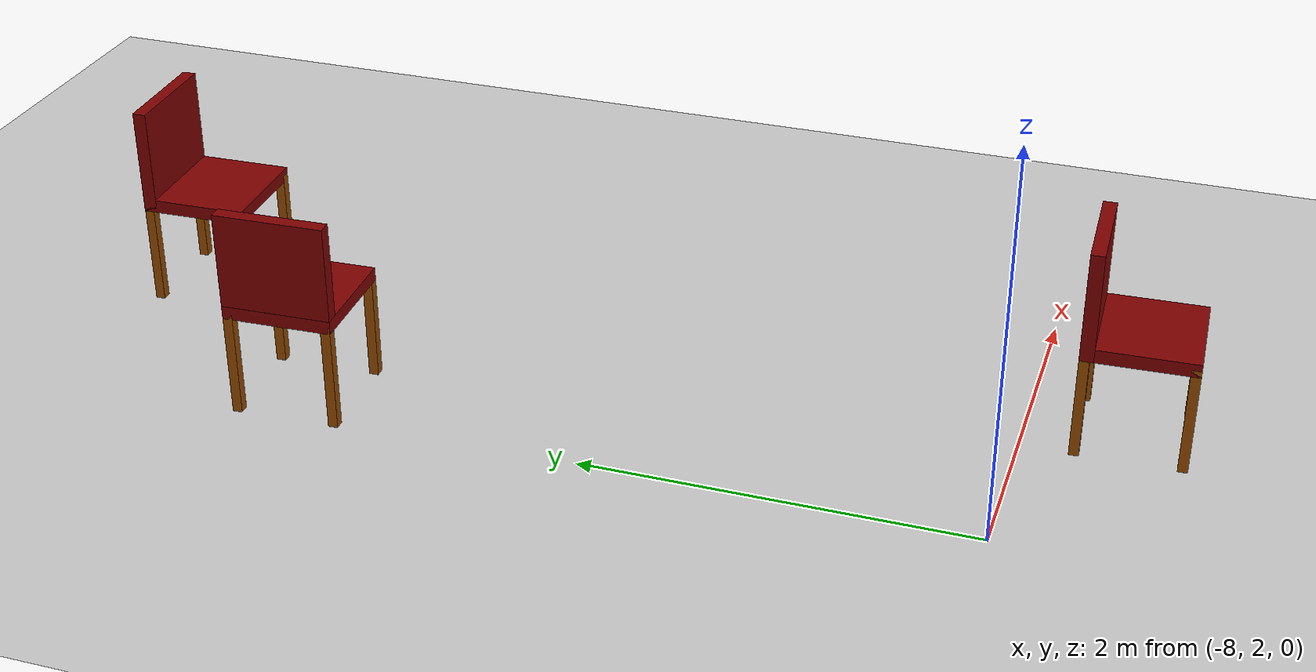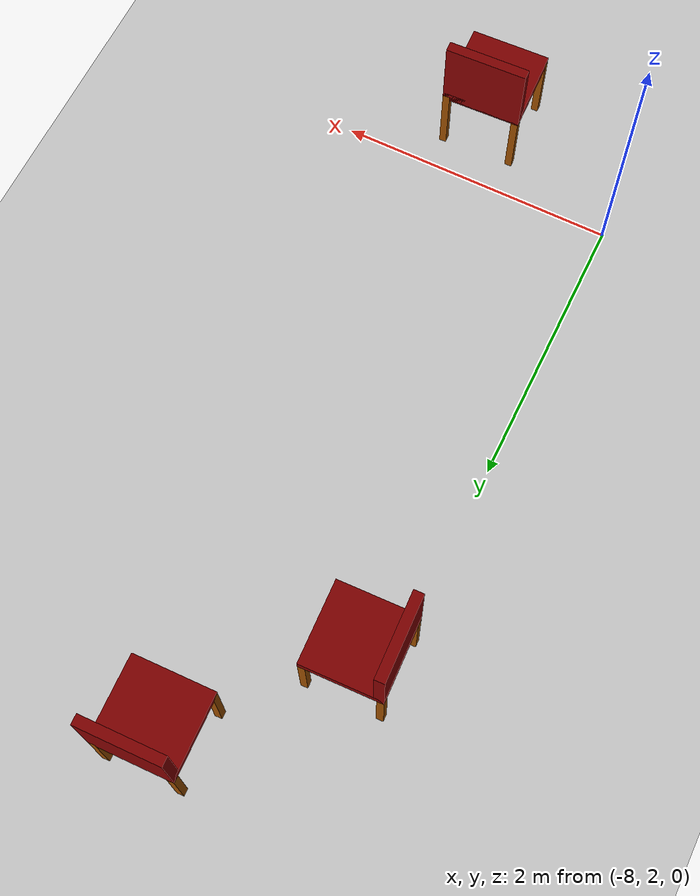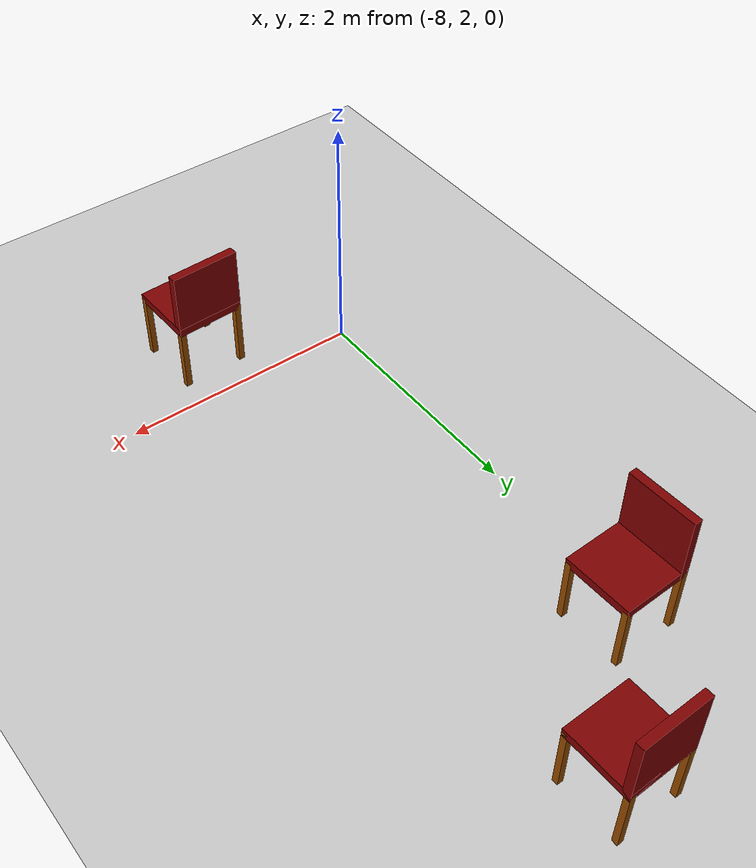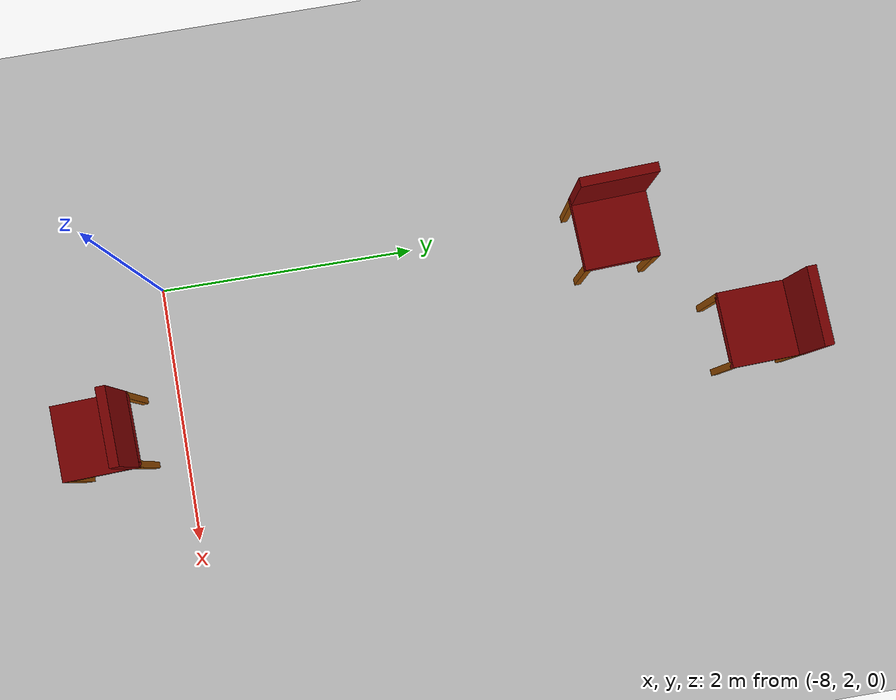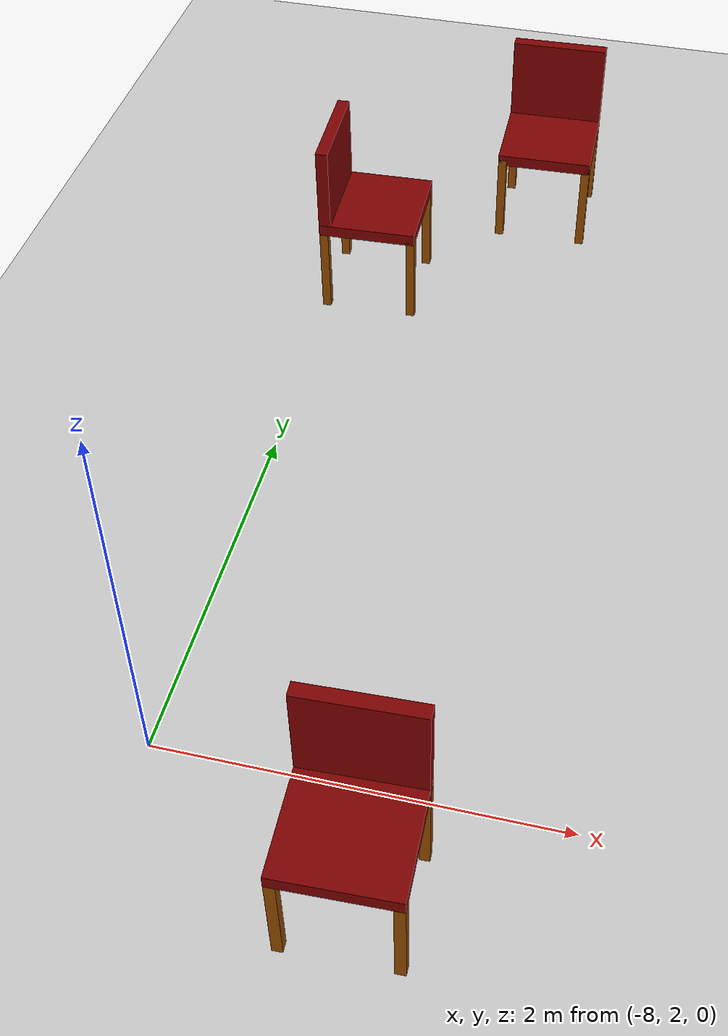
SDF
<sdf version="1.6">
 <world name="default">
  <model name="ground_plane">
   <static>1</static>
   <link name="link">
    <collision name="collision">
     <geometry><plane><normal>0 0 1</normal><size>100 100</size></plane></geometry>
     <surface>
      <contact><collide_bitmask>65535</collide_bitmask></contact>
      <friction><ode><mu>100</mu><mu2>50</mu2></ode></friction>
     </surface>
    </collision>
    <visual name="visual">
     <cast_shadows>0</cast_shadows>
     <geometry><plane><normal>0 0 1</normal><size>100 100</size></plane></geometry>
     <material>
      <script><uri>file://media/materials/scripts/gazebo.material</uri><name>Gazebo/Grey</name></script>
     </material>
    </visual>
   </link>
  </model>
  <model name="chair_0">
   <link name="link_0">
    <inertial>
     <mass>1</mass>
     <inertia>
      <ixx>0.166667</ixx>
      <ixy>0</ixy>
      <ixz>0</ixz>
      <iyy>0.166667</iyy>
      <iyz>0</iyz>
      <izz>0.166667</izz>
     </inertia>
    </inertial>
    <pose>0.000435 0.041667 0.148333 0 -0 0</pose>
    <visual name="visual">
     <geometry><box><size>0.57 0.57 0.07</size></box></geometry>
     <material>
      <lighting>1</lighting>
      <script><uri>file://media/materials/scripts/gazebo.material</uri><name>Gazebo/Grey</name></script>
      <shader type="vertex"><normal_map>__default__</normal_map></shader>
      <ambient>0.502 0 0 1</ambient>
      <diffuse>0.7 0.7 0.7 1</diffuse>
      <specular>0.01 0.01 0.01 1</specular>
      <emissive>0 0 0 1</emissive>
     </material>
    </visual>
    <collision name="collision">
     <geometry><box><size>0.57 0.57 0.07</size></box></geometry>
     <surface>
      <friction>
       <ode><mu>1</mu><mu2>1</mu2><fdir1>0 0 0</fdir1><slip1>0</slip1><slip2>0</slip2></ode>
       <torsional>
        <coefficient>1</coefficient>
        <patch_radius>0</patch_radius>
        <surface_radius>0</surface_radius>
        <use_patch_radius>1</use_patch_radius>
        <ode><slip>0</slip></ode>
       </torsional>
      </friction>
      <bounce><restitution_coefficient>0</restitution_coefficient><threshold>1e+06</threshold></bounce>
      <contact>
       <collide_without_contact>0</collide_without_contact>
       <collide_without_contact_bitmask>1</collide_without_contact_bitmask>
       <collide_bitmask>1</collide_bitmask>
       <ode>
        <soft_cfm>0</soft_cfm>
        <soft_erp>0.2</soft_erp>
        <kp>1e+13</kp>
        <kd>1</kd>
        <max_vel>0.01</max_vel>
        <min_depth>0</min_depth>
       </ode>
       <bullet>
        <split_impulse>1</split_impulse>
        <split_impulse_penetration_threshold>-0.01</split_impulse_penetration_threshold>
        <soft_cfm>0</soft_cfm>
        <soft_erp>0.2</soft_erp>
        <kp>1e+13</kp>
        <kd>1</kd>
       </bullet>
      </contact>
     </surface>
    </collision>
   </link>
   <link name="link_1">
    <inertial>
     <mass>1</mass>
     <inertia>
      <ixx>0.166667</ixx>
      <ixy>0</ixy>
      <ixz>0</ixz>
      <iyy>0.166667</iyy>
      <iyz>0</iyz>
      <izz>0.166667</izz>
     </inertia>
    </inertial>
    <pose>0.000435 -0.208333 0.398333 0 -0 0</pose>
    <visual name="visual">
     <geometry><box><size>0.57 0.07 0.57</size></box></geometry>
     <material>
      <lighting>1</lighting>
      <script><uri>file://media/materials/scripts/gazebo.material</uri><name>Gazebo/Grey</name></script>
      <shader type="vertex"><normal_map>__default__</normal_map></shader>
      <ambient>0.502 0 0 1</ambient>
      <diffuse>0.7 0.7 0.7 1</diffuse>
      <specular>0.01 0.01 0.01 1</specular>
      <emissive>0 0 0 1</emissive>
     </material>
    </visual>
    <collision name="collision">
     <geometry><box><size>0.57 0.07 0.57</size></box></geometry>
     <surface>
      <friction>
       <ode><mu>1</mu><mu2>1</mu2><fdir1>0 0 0</fdir1><slip1>0</slip1><slip2>0</slip2></ode>
       <torsional>
        <coefficient>1</coefficient>
        <patch_radius>0</patch_radius>
        <surface_radius>0</surface_radius>
        <use_patch_radius>1</use_patch_radius>
        <ode><slip>0</slip></ode>
       </torsional>
      </friction>
      <bounce><restitution_coefficient>0</restitution_coefficient><threshold>1e+06</threshold></bounce>
      <contact>
       <collide_without_contact>0</collide_without_contact>
       <collide_without_contact_bitmask>1</collide_without_contact_bitmask>
       <collide_bitmask>1</collide_bitmask>
       <ode>
        <soft_cfm>0</soft_cfm>
        <soft_erp>0.2</soft_erp>
        <kp>1e+13</kp>
        <kd>1</kd>
        <max_vel>0.01</max_vel>
        <min_depth>0</min_depth>
       </ode>
       <bullet>
        <split_impulse>1</split_impulse>
        <split_impulse_penetration_threshold>-0.01</split_impulse_penetration_threshold>
        <soft_cfm>0</soft_cfm>
        <soft_erp>0.2</soft_erp>
        <kp>1e+13</kp>
        <kd>1</kd>
       </bullet>
      </contact>
     </surface>
    </collision>
   </link>
   <link name="link_2">
    <inertial>
     <mass>1</mass>
     <inertia>
      <ixx>0.166667</ixx>
      <ixy>0</ixy>
      <ixz>0</ixz>
      <iyy>0.166667</iyy>
      <iyz>0</iyz>
      <izz>0.166667</izz>
     </inertia>
    </inertial>
    <pose>0.257825 -0.218333 -0.136667 0 -0 0</pose>
    <visual name="visual">
     <geometry><box><size>0.05 0.05 0.57</size></box></geometry>
     <material>
      <lighting>1</lighting>
      <script><uri>file://media/materials/scripts/gazebo.material</uri><name>Gazebo/Grey</name></script>
      <shader type="vertex"><normal_map>__default__</normal_map></shader>
      <ambient>0.588 0.294 0 1</ambient>
      <diffuse>0.7 0.7 0.7 1</diffuse>
      <specular>0.01 0.01 0.01 1</specular>
      <emissive>0 0 0 1</emissive>
     </material>
    </visual>
    <collision name="collision">
     <geometry><box><size>0.05 0.05 0.57</size></box></geometry>
     <surface>
      <friction>
       <ode><mu>1</mu><mu2>1</mu2><fdir1>0 0 0</fdir1><slip1>0</slip1><slip2>0</slip2></ode>
       <torsional>
        <coefficient>1</coefficient>
        <patch_radius>0</patch_radius>
        <surface_radius>0</surface_radius>
        <use_patch_radius>1</use_patch_radius>
        <ode><slip>0</slip></ode>
       </torsional>
      </friction>
      <bounce><restitution_coefficient>0</restitution_coefficient><threshold>1e+06</threshold></bounce>
      <contact>
       <collide_without_contact>0</collide_without_contact>
       <collide_without_contact_bitmask>1</collide_without_contact_bitmask>
       <collide_bitmask>1</collide_bitmask>
       <ode>
        <soft_cfm>0</soft_cfm>
        <soft_erp>0.2</soft_erp>
        <kp>1e+13</kp>
        <kd>1</kd>
        <max_vel>0.01</max_vel>
        <min_depth>0</min_depth>
       </ode>
       <bullet>
        <split_impulse>1</split_impulse>
        <split_impulse_penetration_threshold>-0.01</split_impulse_penetration_threshold>
        <soft_cfm>0</soft_cfm>
        <soft_erp>0.2</soft_erp>
        <kp>1e+13</kp>
        <kd>1</kd>
       </bullet>
      </contact>
     </surface>
    </collision>
   </link>
   <link name="link_2_clone">
    <inertial>
     <mass>1</mass>
     <inertia>
      <ixx>0.166667</ixx>
      <ixy>0</ixy>
      <ixz>0</ixz>
      <iyy>0.166667</iyy>
      <iyz>0</iyz>
      <izz>0.166667</izz>
     </inertia>
    </inertial>
    <pose>-0.259565 -0.218333 -0.136667 0 -0 0</pose>
    <visual name="visual">
     <geometry><box><size>0.05 0.05 0.57</size></box></geometry>
     <material>
      <lighting>1</lighting>
      <script><uri>file://media/materials/scripts/gazebo.material</uri><name>Gazebo/Grey</name></script>
      <shader type="vertex"><normal_map>__default__</normal_map></shader>
      <ambient>0.588 0.294 0 1</ambient>
      <diffuse>0.7 0.7 0.7 1</diffuse>
      <specular>0.01 0.01 0.01 1</specular>
      <emissive>0 0 0 1</emissive>
     </material>
    </visual>
    <collision name="collision">
     <geometry><box><size>0.05 0.05 0.57</size></box></geometry>
     <surface>
      <friction>
       <ode><mu>1</mu><mu2>1</mu2><fdir1>0 0 0</fdir1><slip1>0</slip1><slip2>0</slip2></ode>
       <torsional>
        <coefficient>1</coefficient>
        <patch_radius>0</patch_radius>
        <surface_radius>0</surface_radius>
        <use_patch_radius>1</use_patch_radius>
        <ode><slip>0</slip></ode>
       </torsional>
      </friction>
      <bounce><restitution_coefficient>0</restitution_coefficient><threshold>1e+06</threshold></bounce>
      <contact>
       <collide_without_contact>0</collide_without_contact>
       <collide_without_contact_bitmask>1</collide_without_contact_bitmask>
       <collide_bitmask>1</collide_bitmask>
       <ode>
        <soft_cfm>0</soft_cfm>
        <soft_erp>0.2</soft_erp>
        <kp>1e+13</kp>
        <kd>1</kd>
        <max_vel>0.01</max_vel>
        <min_depth>0</min_depth>
       </ode>
       <bullet>
        <split_impulse>1</split_impulse>
        <split_impulse_penetration_threshold>-0.01</split_impulse_penetration_threshold>
        <soft_cfm>0</soft_cfm>
        <soft_erp>0.2</soft_erp>
        <kp>1e+13</kp>
        <kd>1</kd>
       </bullet>
      </contact>
     </surface>
    </collision>
   </link>
   <link name="link_2_clone_clone">
    <inertial>
     <mass>1</mass>
     <inertia>
      <ixx>0.166667</ixx>
      <ixy>0</ixy>
      <ixz>0</ixz>
      <iyy>0.166667</iyy>
      <iyz>0</iyz>
      <izz>0.166667</izz>
     </inertia>
    </inertial>
    <pose>-0.259565 0.301667 -0.136667 0 -0 0</pose>
    <visual name="visual">
     <geometry><box><size>0.05 0.05 0.57</size></box></geometry>
     <material>
      <lighting>1</lighting>
      <script><uri>file://media/materials/scripts/gazebo.material</uri><name>Gazebo/Grey</name></script>
      <shader type="vertex"><normal_map>__default__</normal_map></shader>
      <ambient>0.588 0.294 0 1</ambient>
      <diffuse>0.7 0.7 0.7 1</diffuse>
      <specular>0.01 0.01 0.01 1</specular>
      <emissive>0 0 0 1</emissive>
     </material>
    </visual>
    <collision name="collision">
     <geometry><box><size>0.05 0.05 0.57</size></box></geometry>
     <surface>
      <friction>
       <ode><mu>1</mu><mu2>1</mu2><fdir1>0 0 0</fdir1><slip1>0</slip1><slip2>0</slip2></ode>
       <torsional>
        <coefficient>1</coefficient>
        <patch_radius>0</patch_radius>
        <surface_radius>0</surface_radius>
        <use_patch_radius>1</use_patch_radius>
        <ode><slip>0</slip></ode>
       </torsional>
      </friction>
      <bounce><restitution_coefficient>0</restitution_coefficient><threshold>1e+06</threshold></bounce>
      <contact>
       <collide_without_contact>0</collide_without_contact>
       <collide_without_contact_bitmask>1</collide_without_contact_bitmask>
       <collide_bitmask>1</collide_bitmask>
       <ode>
        <soft_cfm>0</soft_cfm>
        <soft_erp>0.2</soft_erp>
        <kp>1e+13</kp>
        <kd>1</kd>
        <max_vel>0.01</max_vel>
        <min_depth>0</min_depth>
       </ode>
       <bullet>
        <split_impulse>1</split_impulse>
        <split_impulse_penetration_threshold>-0.01</split_impulse_penetration_threshold>
        <soft_cfm>0</soft_cfm>
        <soft_erp>0.2</soft_erp>
        <kp>1e+13</kp>
        <kd>1</kd>
       </bullet>
      </contact>
     </surface>
    </collision>
   </link>
   <link name="link_2_clone_clone_0">
    <inertial>
     <mass>1</mass>
     <inertia>
      <ixx>0.166667</ixx>
      <ixy>0</ixy>
      <ixz>0</ixz>
      <iyy>0.166667</iyy>
      <iyz>0</iyz>
      <izz>0.166667</izz>
     </inertia>
    </inertial>
    <pose>0.260435 0.301667 -0.136667 0 -0 0</pose>
    <visual name="visual">
     <geometry><box><size>0.05 0.05 0.57</size></box></geometry>
     <material>
      <lighting>1</lighting>
      <script><uri>file://media/materials/scripts/gazebo.material</uri><name>Gazebo/Grey</name></script>
      <shader type="vertex"><normal_map>__default__</normal_map></shader>
      <ambient>0.588 0.294 0 1</ambient>
      <diffuse>0.7 0.7 0.7 1</diffuse>
      <specular>0.01 0.01 0.01 1</specular>
      <emissive>0 0 0 1</emissive>
     </material>
    </visual>
    <collision name="collision">
     <geometry><box><size>0.05 0.05 0.57</size></box></geometry>
     <surface>
      <friction>
       <ode><mu>1</mu><mu2>1</mu2><fdir1>0 0 0</fdir1><slip1>0</slip1><slip2>0</slip2></ode>
       <torsional>
        <coefficient>1</coefficient>
        <patch_radius>0</patch_radius>
        <surface_radius>0</surface_radius>
        <use_patch_radius>1</use_patch_radius>
        <ode><slip>0</slip></ode>
       </torsional>
      </friction>
      <bounce><restitution_coefficient>0</restitution_coefficient><threshold>1e+06</threshold></bounce>
      <contact>
       <collide_without_contact>0</collide_without_contact>
       <collide_without_contact_bitmask>1</collide_without_contact_bitmask>
       <collide_bitmask>1</collide_bitmask>
       <ode>
        <soft_cfm>0</soft_cfm>
        <soft_erp>0.2</soft_erp>
        <kp>1e+13</kp>
        <kd>1</kd>
        <max_vel>0.01</max_vel>
        <min_depth>0</min_depth>
       </ode>
       <bullet>
        <split_impulse>1</split_impulse>
        <split_impulse_penetration_threshold>-0.01</split_impulse_penetration_threshold>
        <soft_cfm>0</soft_cfm>
        <soft_erp>0.2</soft_erp>
        <kp>1e+13</kp>
        <kd>1</kd>
       </bullet>
      </contact>
     </surface>
    </collision>
   </link>
   <joint name="link_0_JOINT_0" type="fixed">
    <parent>link_0</parent>
    <child>link_1</child>
    <physics>
     <ode><limit><cfm>0</cfm><erp>0.2</erp></limit><suspension><cfm>0</cfm><erp>0.2</erp></suspension></ode>
    </physics>
   </joint>
   <joint name="link_0_JOINT_4" type="fixed">
    <parent>link_0</parent>
    <child>link_2</child>
    <physics>
     <ode><limit><cfm>0</cfm><erp>0.2</erp></limit><suspension><cfm>0</cfm><erp>0.2</erp></suspension></ode>
    </physics>
   </joint>
   <joint name="link_0_JOINT_5" type="fixed">
    <parent>link_0</parent>
    <child>link_2_clone</child>
    <physics>
     <ode><limit><cfm>0</cfm><erp>0.2</erp></limit><suspension><cfm>0</cfm><erp>0.2</erp></suspension></ode>
    </physics>
   </joint>
   <joint name="link_0_JOINT_6" type="fixed">
    <parent>link_0</parent>
    <child>link_2_clone_clone_0</child>
    <physics>
     <ode><limit><cfm>0</cfm><erp>0.2</erp></limit><suspension><cfm>0</cfm><erp>0.2</erp></suspension></ode>
    </physics>
   </joint>
   <joint name="link_0_JOINT_7" type="fixed">
    <parent>link_0</parent>
    <child>link_2_clone_clone</child>
    <physics>
     <ode><limit><cfm>0</cfm><erp>0.2</erp></limit><suspension><cfm>0</cfm><erp>0.2</erp></suspension></ode>
    </physics>
   </joint>
   <static>0</static>
   <pose>-7.8394 5.52494 0.421667 -1e-06 -1e-06 -1.53299</pose>
  </model>
  <model name="chair_2">
   <link name="link_0">
    <inertial>
     <mass>1</mass>
     <inertia>
      <ixx>0.166667</ixx>
      <ixy>0</ixy>
      <ixz>0</ixz>
      <iyy>0.166667</iyy>
      <iyz>0</iyz>
      <izz>0.166667</izz>
     </inertia>
    </inertial>
    <pose>0.000435 0.041667 0.148333 0 -0 0</pose>
    <visual name="visual">
     <geometry><box><size>0.57 0.57 0.07</size></box></geometry>
     <material>
      <lighting>1</lighting>
      <script><uri>file://media/materials/scripts/gazebo.material</uri><name>Gazebo/Grey</name></script>
      <shader type="vertex"><normal_map>__default__</normal_map></shader>
      <ambient>0.502 0 0 1</ambient>
      <diffuse>0.7 0.7 0.7 1</diffuse>
      <specular>0.01 0.01 0.01 1</specular>
      <emissive>0 0 0 1</emissive>
     </material>
    </visual>
    <collision name="collision">
     <geometry><box><size>0.57 0.57 0.07</size></box></geometry>
     <surface>
      <friction>
       <ode><mu>1</mu><mu2>1</mu2><fdir1>0 0 0</fdir1><slip1>0</slip1><slip2>0</slip2></ode>
       <torsional>
        <coefficient>1</coefficient>
        <patch_radius>0</patch_radius>
        <surface_radius>0</surface_radius>
        <use_patch_radius>1</use_patch_radius>
        <ode><slip>0</slip></ode>
       </torsional>
      </friction>
      <bounce><restitution_coefficient>0</restitution_coefficient><threshold>1e+06</threshold></bounce>
      <contact>
       <collide_without_contact>0</collide_without_contact>
       <collide_without_contact_bitmask>1</collide_without_contact_bitmask>
       <collide_bitmask>1</collide_bitmask>
       <ode>
        <soft_cfm>0</soft_cfm>
        <soft_erp>0.2</soft_erp>
        <kp>1e+13</kp>
        <kd>1</kd>
        <max_vel>0.01</max_vel>
        <min_depth>0</min_depth>
       </ode>
       <bullet>
        <split_impulse>1</split_impulse>
        <split_impulse_penetration_threshold>-0.01</split_impulse_penetration_threshold>
        <soft_cfm>0</soft_cfm>
        <soft_erp>0.2</soft_erp>
        <kp>1e+13</kp>
        <kd>1</kd>
       </bullet>
      </contact>
     </surface>
    </collision>
   </link>
   <link name="link_1">
    <inertial>
     <mass>1</mass>
     <inertia>
      <ixx>0.166667</ixx>
      <ixy>0</ixy>
      <ixz>0</ixz>
      <iyy>0.166667</iyy>
      <iyz>0</iyz>
      <izz>0.166667</izz>
     </inertia>
    </inertial>
    <pose>0.000435 -0.208333 0.398333 0 -0 0</pose>
    <visual name="visual">
     <geometry><box><size>0.57 0.07 0.57</size></box></geometry>
     <material>
      <lighting>1</lighting>
      <script><uri>file://media/materials/scripts/gazebo.material</uri><name>Gazebo/Grey</name></script>
      <shader type="vertex"><normal_map>__default__</normal_map></shader>
      <ambient>0.502 0 0 1</ambient>
      <diffuse>0.7 0.7 0.7 1</diffuse>
      <specular>0.01 0.01 0.01 1</specular>
      <emissive>0 0 0 1</emissive>
     </material>
    </visual>
    <collision name="collision">
     <geometry><box><size>0.57 0.07 0.57</size></box></geometry>
     <surface>
      <friction>
       <ode><mu>1</mu><mu2>1</mu2><fdir1>0 0 0</fdir1><slip1>0</slip1><slip2>0</slip2></ode>
       <torsional>
        <coefficient>1</coefficient>
        <patch_radius>0</patch_radius>
        <surface_radius>0</surface_radius>
        <use_patch_radius>1</use_patch_radius>
        <ode><slip>0</slip></ode>
       </torsional>
      </friction>
      <bounce><restitution_coefficient>0</restitution_coefficient><threshold>1e+06</threshold></bounce>
      <contact>
       <collide_without_contact>0</collide_without_contact>
       <collide_without_contact_bitmask>1</collide_without_contact_bitmask>
       <collide_bitmask>1</collide_bitmask>
       <ode>
        <soft_cfm>0</soft_cfm>
        <soft_erp>0.2</soft_erp>
        <kp>1e+13</kp>
        <kd>1</kd>
        <max_vel>0.01</max_vel>
        <min_depth>0</min_depth>
       </ode>
       <bullet>
        <split_impulse>1</split_impulse>
        <split_impulse_penetration_threshold>-0.01</split_impulse_penetration_threshold>
        <soft_cfm>0</soft_cfm>
        <soft_erp>0.2</soft_erp>
        <kp>1e+13</kp>
        <kd>1</kd>
       </bullet>
      </contact>
     </surface>
    </collision>
   </link>
   <link name="link_2">
    <inertial>
     <mass>1</mass>
     <inertia>
      <ixx>0.166667</ixx>
      <ixy>0</ixy>
      <ixz>0</ixz>
      <iyy>0.166667</iyy>
      <iyz>0</iyz>
      <izz>0.166667</izz>
     </inertia>
    </inertial>
    <pose>0.257825 -0.218333 -0.136667 0 -0 0</pose>
    <visual name="visual">
     <geometry><box><size>0.05 0.05 0.57</size></box></geometry>
     <material>
      <lighting>1</lighting>
      <script><uri>file://media/materials/scripts/gazebo.material</uri><name>Gazebo/Grey</name></script>
      <shader type="vertex"><normal_map>__default__</normal_map></shader>
      <ambient>0.588 0.294 0 1</ambient>
      <diffuse>0.7 0.7 0.7 1</diffuse>
      <specular>0.01 0.01 0.01 1</specular>
      <emissive>0 0 0 1</emissive>
     </material>
    </visual>
    <collision name="collision">
     <geometry><box><size>0.05 0.05 0.57</size></box></geometry>
     <surface>
      <friction>
       <ode><mu>1</mu><mu2>1</mu2><fdir1>0 0 0</fdir1><slip1>0</slip1><slip2>0</slip2></ode>
       <torsional>
        <coefficient>1</coefficient>
        <patch_radius>0</patch_radius>
        <surface_radius>0</surface_radius>
        <use_patch_radius>1</use_patch_radius>
        <ode><slip>0</slip></ode>
       </torsional>
      </friction>
      <bounce><restitution_coefficient>0</restitution_coefficient><threshold>1e+06</threshold></bounce>
      <contact>
       <collide_without_contact>0</collide_without_contact>
       <collide_without_contact_bitmask>1</collide_without_contact_bitmask>
       <collide_bitmask>1</collide_bitmask>
       <ode>
        <soft_cfm>0</soft_cfm>
        <soft_erp>0.2</soft_erp>
        <kp>1e+13</kp>
        <kd>1</kd>
        <max_vel>0.01</max_vel>
        <min_depth>0</min_depth>
       </ode>
       <bullet>
        <split_impulse>1</split_impulse>
        <split_impulse_penetration_threshold>-0.01</split_impulse_penetration_threshold>
        <soft_cfm>0</soft_cfm>
        <soft_erp>0.2</soft_erp>
        <kp>1e+13</kp>
        <kd>1</kd>
       </bullet>
      </contact>
     </surface>
    </collision>
   </link>
   <link name="link_2_clone">
    <inertial>
     <mass>1</mass>
     <inertia>
      <ixx>0.166667</ixx>
      <ixy>0</ixy>
      <ixz>0</ixz>
      <iyy>0.166667</iyy>
      <iyz>0</iyz>
      <izz>0.166667</izz>
     </inertia>
    </inertial>
    <pose>-0.259565 -0.218333 -0.136667 0 -0 0</pose>
    <visual name="visual">
     <geometry><box><size>0.05 0.05 0.57</size></box></geometry>
     <material>
      <lighting>1</lighting>
      <script><uri>file://media/materials/scripts/gazebo.material</uri><name>Gazebo/Grey</name></script>
      <shader type="vertex"><normal_map>__default__</normal_map></shader>
      <ambient>0.588 0.294 0 1</ambient>
      <diffuse>0.7 0.7 0.7 1</diffuse>
      <specular>0.01 0.01 0.01 1</specular>
      <emissive>0 0 0 1</emissive>
     </material>
    </visual>
    <collision name="collision">
     <geometry><box><size>0.05 0.05 0.57</size></box></geometry>
     <surface>
      <friction>
       <ode><mu>1</mu><mu2>1</mu2><fdir1>0 0 0</fdir1><slip1>0</slip1><slip2>0</slip2></ode>
       <torsional>
        <coefficient>1</coefficient>
        <patch_radius>0</patch_radius>
        <surface_radius>0</surface_radius>
        <use_patch_radius>1</use_patch_radius>
        <ode><slip>0</slip></ode>
       </torsional>
      </friction>
      <bounce><restitution_coefficient>0</restitution_coefficient><threshold>1e+06</threshold></bounce>
      <contact>
       <collide_without_contact>0</collide_without_contact>
       <collide_without_contact_bitmask>1</collide_without_contact_bitmask>
       <collide_bitmask>1</collide_bitmask>
       <ode>
        <soft_cfm>0</soft_cfm>
        <soft_erp>0.2</soft_erp>
        <kp>1e+13</kp>
        <kd>1</kd>
        <max_vel>0.01</max_vel>
        <min_depth>0</min_depth>
       </ode>
       <bullet>
        <split_impulse>1</split_impulse>
        <split_impulse_penetration_threshold>-0.01</split_impulse_penetration_threshold>
        <soft_cfm>0</soft_cfm>
        <soft_erp>0.2</soft_erp>
        <kp>1e+13</kp>
        <kd>1</kd>
       </bullet>
      </contact>
     </surface>
    </collision>
   </link>
   <link name="link_2_clone_clone">
    <inertial>
     <mass>1</mass>
     <inertia>
      <ixx>0.166667</ixx>
      <ixy>0</ixy>
      <ixz>0</ixz>
      <iyy>0.166667</iyy>
      <iyz>0</iyz>
      <izz>0.166667</izz>
     </inertia>
    </inertial>
    <pose>-0.259565 0.301667 -0.136667 0 -0 0</pose>
    <visual name="visual">
     <geometry><box><size>0.05 0.05 0.57</size></box></geometry>
     <material>
      <lighting>1</lighting>
      <script><uri>file://media/materials/scripts/gazebo.material</uri><name>Gazebo/Grey</name></script>
      <shader type="vertex"><normal_map>__default__</normal_map></shader>
      <ambient>0.588 0.294 0 1</ambient>
      <diffuse>0.7 0.7 0.7 1</diffuse>
      <specular>0.01 0.01 0.01 1</specular>
      <emissive>0 0 0 1</emissive>
     </material>
    </visual>
    <collision name="collision">
     <geometry><box><size>0.05 0.05 0.57</size></box></geometry>
     <surface>
      <friction>
       <ode><mu>1</mu><mu2>1</mu2><fdir1>0 0 0</fdir1><slip1>0</slip1><slip2>0</slip2></ode>
       <torsional>
        <coefficient>1</coefficient>
        <patch_radius>0</patch_radius>
        <surface_radius>0</surface_radius>
        <use_patch_radius>1</use_patch_radius>
        <ode><slip>0</slip></ode>
       </torsional>
      </friction>
      <bounce><restitution_coefficient>0</restitution_coefficient><threshold>1e+06</threshold></bounce>
      <contact>
       <collide_without_contact>0</collide_without_contact>
       <collide_without_contact_bitmask>1</collide_without_contact_bitmask>
       <collide_bitmask>1</collide_bitmask>
       <ode>
        <soft_cfm>0</soft_cfm>
        <soft_erp>0.2</soft_erp>
        <kp>1e+13</kp>
        <kd>1</kd>
        <max_vel>0.01</max_vel>
        <min_depth>0</min_depth>
       </ode>
       <bullet>
        <split_impulse>1</split_impulse>
        <split_impulse_penetration_threshold>-0.01</split_impulse_penetration_threshold>
        <soft_cfm>0</soft_cfm>
        <soft_erp>0.2</soft_erp>
        <kp>1e+13</kp>
        <kd>1</kd>
       </bullet>
      </contact>
     </surface>
    </collision>
   </link>
   <link name="link_2_clone_clone_0">
    <inertial>
     <mass>1</mass>
     <inertia>
      <ixx>0.166667</ixx>
      <ixy>0</ixy>
      <ixz>0</ixz>
      <iyy>0.166667</iyy>
      <iyz>0</iyz>
      <izz>0.166667</izz>
     </inertia>
    </inertial>
    <pose>0.260435 0.301667 -0.136667 0 -0 0</pose>
    <visual name="visual">
     <geometry><box><size>0.05 0.05 0.57</size></box></geometry>
     <material>
      <lighting>1</lighting>
      <script><uri>file://media/materials/scripts/gazebo.material</uri><name>Gazebo/Grey</name></script>
      <shader type="vertex"><normal_map>__default__</normal_map></shader>
      <ambient>0.588 0.294 0 1</ambient>
      <diffuse>0.7 0.7 0.7 1</diffuse>
      <specular>0.01 0.01 0.01 1</specular>
      <emissive>0 0 0 1</emissive>
     </material>
    </visual>
    <collision name="collision">
     <geometry><box><size>0.05 0.05 0.57</size></box></geometry>
     <surface>
      <friction>
       <ode><mu>1</mu><mu2>1</mu2><fdir1>0 0 0</fdir1><slip1>0</slip1><slip2>0</slip2></ode>
       <torsional>
        <coefficient>1</coefficient>
        <patch_radius>0</patch_radius>
        <surface_radius>0</surface_radius>
        <use_patch_radius>1</use_patch_radius>
        <ode><slip>0</slip></ode>
       </torsional>
      </friction>
      <bounce><restitution_coefficient>0</restitution_coefficient><threshold>1e+06</threshold></bounce>
      <contact>
       <collide_without_contact>0</collide_without_contact>
       <collide_without_contact_bitmask>1</collide_without_contact_bitmask>
       <collide_bitmask>1</collide_bitmask>
       <ode>
        <soft_cfm>0</soft_cfm>
        <soft_erp>0.2</soft_erp>
        <kp>1e+13</kp>
        <kd>1</kd>
        <max_vel>0.01</max_vel>
        <min_depth>0</min_depth>
       </ode>
       <bullet>
        <split_impulse>1</split_impulse>
        <split_impulse_penetration_threshold>-0.01</split_impulse_penetration_threshold>
        <soft_cfm>0</soft_cfm>
        <soft_erp>0.2</soft_erp>
        <kp>1e+13</kp>
        <kd>1</kd>
       </bullet>
      </contact>
     </surface>
    </collision>
   </link>
   <joint name="link_0_JOINT_0" type="fixed">
    <parent>link_0</parent>
    <child>link_1</child>
    <physics>
     <ode><limit><cfm>0</cfm><erp>0.2</erp></limit><suspension><cfm>0</cfm><erp>0.2</erp></suspension></ode>
    </physics>
   </joint>
   <joint name="link_0_JOINT_4" type="fixed">
    <parent>link_0</parent>
    <child>link_2</child>
    <physics>
     <ode><limit><cfm>0</cfm><erp>0.2</erp></limit><suspension><cfm>0</cfm><erp>0.2</erp></suspension></ode>
    </physics>
   </joint>
   <joint name="link_0_JOINT_5" type="fixed">
    <parent>link_0</parent>
    <child>link_2_clone</child>
    <physics>
     <ode><limit><cfm>0</cfm><erp>0.2</erp></limit><suspension><cfm>0</cfm><erp>0.2</erp></suspension></ode>
    </physics>
   </joint>
   <joint name="link_0_JOINT_6" type="fixed">
    <parent>link_0</parent>
    <child>link_2_clone_clone_0</child>
    <physics>
     <ode><limit><cfm>0</cfm><erp>0.2</erp></limit><suspension><cfm>0</cfm><erp>0.2</erp></suspension></ode>
    </physics>
   </joint>
   <joint name="link_0_JOINT_7" type="fixed">
    <parent>link_0</parent>
    <child>link_2_clone_clone</child>
    <physics>
     <ode><limit><cfm>0</cfm><erp>0.2</erp></limit><suspension><cfm>0</cfm><erp>0.2</erp></suspension></ode>
    </physics>
   </joint>
   <static>0</static>
   <pose>-6.90129 6.51253 0.421667 1e-06 2e-06 -3.11141</pose>
  </model>
  <model name="chair_6">
   <link name="link_0">
    <inertial>
     <mass>1</mass>
     <inertia>
      <ixx>0.166667</ixx>
      <ixy>0</ixy>
      <ixz>0</ixz>
      <iyy>0.166667</iyy>
      <iyz>0</iyz>
      <izz>0.166667</izz>
     </inertia>
    </inertial>
    <pose>0.000435 0.041667 0.148333 0 -0 0</pose>
    <visual name="visual">
     <geometry><box><size>0.57 0.57 0.07</size></box></geometry>
     <material>
      <lighting>1</lighting>
      <script><uri>file://media/materials/scripts/gazebo.material</uri><name>Gazebo/Grey</name></script>
      <shader type="vertex"><normal_map>__default__</normal_map></shader>
      <ambient>0.502 0 0 1</ambient>
      <diffuse>0.7 0.7 0.7 1</diffuse>
      <specular>0.01 0.01 0.01 1</specular>
      <emissive>0 0 0 1</emissive>
     </material>
    </visual>
    <collision name="collision">
     <geometry><box><size>0.57 0.57 0.07</size></box></geometry>
     <surface>
      <friction>
       <ode><mu>1</mu><mu2>1</mu2><fdir1>0 0 0</fdir1><slip1>0</slip1><slip2>0</slip2></ode>
       <torsional>
        <coefficient>1</coefficient>
        <patch_radius>0</patch_radius>
        <surface_radius>0</surface_radius>
        <use_patch_radius>1</use_patch_radius>
        <ode><slip>0</slip></ode>
       </torsional>
      </friction>
      <bounce><restitution_coefficient>0</restitution_coefficient><threshold>1e+06</threshold></bounce>
      <contact>
       <collide_without_contact>0</collide_without_contact>
       <collide_without_contact_bitmask>1</collide_without_contact_bitmask>
       <collide_bitmask>1</collide_bitmask>
       <ode>
        <soft_cfm>0</soft_cfm>
        <soft_erp>0.2</soft_erp>
        <kp>1e+13</kp>
        <kd>1</kd>
        <max_vel>0.01</max_vel>
        <min_depth>0</min_depth>
       </ode>
       <bullet>
        <split_impulse>1</split_impulse>
        <split_impulse_penetration_threshold>-0.01</split_impulse_penetration_threshold>
        <soft_cfm>0</soft_cfm>
        <soft_erp>0.2</soft_erp>
        <kp>1e+13</kp>
        <kd>1</kd>
       </bullet>
      </contact>
     </surface>
    </collision>
   </link>
   <link name="link_1">
    <inertial>
     <mass>1</mass>
     <inertia>
      <ixx>0.166667</ixx>
      <ixy>0</ixy>
      <ixz>0</ixz>
      <iyy>0.166667</iyy>
      <iyz>0</iyz>
      <izz>0.166667</izz>
     </inertia>
    </inertial>
    <pose>0.000435 -0.208333 0.398333 0 -0 0</pose>
    <visual name="visual">
     <geometry><box><size>0.57 0.07 0.57</size></box></geometry>
     <material>
      <lighting>1</lighting>
      <script><uri>file://media/materials/scripts/gazebo.material</uri><name>Gazebo/Grey</name></script>
      <shader type="vertex"><normal_map>__default__</normal_map></shader>
      <ambient>0.502 0 0 1</ambient>
      <diffuse>0.7 0.7 0.7 1</diffuse>
      <specular>0.01 0.01 0.01 1</specular>
      <emissive>0 0 0 1</emissive>
     </material>
    </visual>
    <collision name="collision">
     <geometry><box><size>0.57 0.07 0.57</size></box></geometry>
     <surface>
      <friction>
       <ode><mu>1</mu><mu2>1</mu2><fdir1>0 0 0</fdir1><slip1>0</slip1><slip2>0</slip2></ode>
       <torsional>
        <coefficient>1</coefficient>
        <patch_radius>0</patch_radius>
        <surface_radius>0</surface_radius>
        <use_patch_radius>1</use_patch_radius>
        <ode><slip>0</slip></ode>
       </torsional>
      </friction>
      <bounce><restitution_coefficient>0</restitution_coefficient><threshold>1e+06</threshold></bounce>
      <contact>
       <collide_without_contact>0</collide_without_contact>
       <collide_without_contact_bitmask>1</collide_without_contact_bitmask>
       <collide_bitmask>1</collide_bitmask>
       <ode>
        <soft_cfm>0</soft_cfm>
        <soft_erp>0.2</soft_erp>
        <kp>1e+13</kp>
        <kd>1</kd>
        <max_vel>0.01</max_vel>
        <min_depth>0</min_depth>
       </ode>
       <bullet>
        <split_impulse>1</split_impulse>
        <split_impulse_penetration_threshold>-0.01</split_impulse_penetration_threshold>
        <soft_cfm>0</soft_cfm>
        <soft_erp>0.2</soft_erp>
        <kp>1e+13</kp>
        <kd>1</kd>
       </bullet>
      </contact>
     </surface>
    </collision>
   </link>
   <link name="link_2">
    <inertial>
     <mass>1</mass>
     <inertia>
      <ixx>0.166667</ixx>
      <ixy>0</ixy>
      <ixz>0</ixz>
      <iyy>0.166667</iyy>
      <iyz>0</iyz>
      <izz>0.166667</izz>
     </inertia>
    </inertial>
    <pose>0.257825 -0.218333 -0.136667 0 -0 0</pose>
    <visual name="visual">
     <geometry><box><size>0.05 0.05 0.57</size></box></geometry>
     <material>
      <lighting>1</lighting>
      <script><uri>file://media/materials/scripts/gazebo.material</uri><name>Gazebo/Grey</name></script>
      <shader type="vertex"><normal_map>__default__</normal_map></shader>
      <ambient>0.588 0.294 0 1</ambient>
      <diffuse>0.7 0.7 0.7 1</diffuse>
      <specular>0.01 0.01 0.01 1</specular>
      <emissive>0 0 0 1</emissive>
     </material>
    </visual>
    <collision name="collision">
     <geometry><box><size>0.05 0.05 0.57</size></box></geometry>
     <surface>
      <friction>
       <ode><mu>1</mu><mu2>1</mu2><fdir1>0 0 0</fdir1><slip1>0</slip1><slip2>0</slip2></ode>
       <torsional>
        <coefficient>1</coefficient>
        <patch_radius>0</patch_radius>
        <surface_radius>0</surface_radius>
        <use_patch_radius>1</use_patch_radius>
        <ode><slip>0</slip></ode>
       </torsional>
      </friction>
      <bounce><restitution_coefficient>0</restitution_coefficient><threshold>1e+06</threshold></bounce>
      <contact>
       <collide_without_contact>0</collide_without_contact>
       <collide_without_contact_bitmask>1</collide_without_contact_bitmask>
       <collide_bitmask>1</collide_bitmask>
       <ode>
        <soft_cfm>0</soft_cfm>
        <soft_erp>0.2</soft_erp>
        <kp>1e+13</kp>
        <kd>1</kd>
        <max_vel>0.01</max_vel>
        <min_depth>0</min_depth>
       </ode>
       <bullet>
        <split_impulse>1</split_impulse>
        <split_impulse_penetration_threshold>-0.01</split_impulse_penetration_threshold>
        <soft_cfm>0</soft_cfm>
        <soft_erp>0.2</soft_erp>
        <kp>1e+13</kp>
        <kd>1</kd>
       </bullet>
      </contact>
     </surface>
    </collision>
   </link>
   <link name="link_2_clone">
    <inertial>
     <mass>1</mass>
     <inertia>
      <ixx>0.166667</ixx>
      <ixy>0</ixy>
      <ixz>0</ixz>
      <iyy>0.166667</iyy>
      <iyz>0</iyz>
      <izz>0.166667</izz>
     </inertia>
    </inertial>
    <pose>-0.259565 -0.218333 -0.136667 0 -0 0</pose>
    <visual name="visual">
     <geometry><box><size>0.05 0.05 0.57</size></box></geometry>
     <material>
      <lighting>1</lighting>
      <script><uri>file://media/materials/scripts/gazebo.material</uri><name>Gazebo/Grey</name></script>
      <shader type="vertex"><normal_map>__default__</normal_map></shader>
      <ambient>0.588 0.294 0 1</ambient>
      <diffuse>0.7 0.7 0.7 1</diffuse>
      <specular>0.01 0.01 0.01 1</specular>
      <emissive>0 0 0 1</emissive>
     </material>
    </visual>
    <collision name="collision">
     <geometry><box><size>0.05 0.05 0.57</size></box></geometry>
     <surface>
      <friction>
       <ode><mu>1</mu><mu2>1</mu2><fdir1>0 0 0</fdir1><slip1>0</slip1><slip2>0</slip2></ode>
       <torsional>
        <coefficient>1</coefficient>
        <patch_radius>0</patch_radius>
        <surface_radius>0</surface_radius>
        <use_patch_radius>1</use_patch_radius>
        <ode><slip>0</slip></ode>
       </torsional>
      </friction>
      <bounce><restitution_coefficient>0</restitution_coefficient><threshold>1e+06</threshold></bounce>
      <contact>
       <collide_without_contact>0</collide_without_contact>
       <collide_without_contact_bitmask>1</collide_without_contact_bitmask>
       <collide_bitmask>1</collide_bitmask>
       <ode>
        <soft_cfm>0</soft_cfm>
        <soft_erp>0.2</soft_erp>
        <kp>1e+13</kp>
        <kd>1</kd>
        <max_vel>0.01</max_vel>
        <min_depth>0</min_depth>
       </ode>
       <bullet>
        <split_impulse>1</split_impulse>
        <split_impulse_penetration_threshold>-0.01</split_impulse_penetration_threshold>
        <soft_cfm>0</soft_cfm>
        <soft_erp>0.2</soft_erp>
        <kp>1e+13</kp>
        <kd>1</kd>
       </bullet>
      </contact>
     </surface>
    </collision>
   </link>
   <link name="link_2_clone_clone">
    <inertial>
     <mass>1</mass>
     <inertia>
      <ixx>0.166667</ixx>
      <ixy>0</ixy>
      <ixz>0</ixz>
      <iyy>0.166667</iyy>
      <iyz>0</iyz>
      <izz>0.166667</izz>
     </inertia>
    </inertial>
    <pose>-0.259565 0.301667 -0.136667 0 -0 0</pose>
    <visual name="visual">
     <geometry><box><size>0.05 0.05 0.57</size></box></geometry>
     <material>
      <lighting>1</lighting>
      <script><uri>file://media/materials/scripts/gazebo.material</uri><name>Gazebo/Grey</name></script>
      <shader type="vertex"><normal_map>__default__</normal_map></shader>
      <ambient>0.588 0.294 0 1</ambient>
      <diffuse>0.7 0.7 0.7 1</diffuse>
      <specular>0.01 0.01 0.01 1</specular>
      <emissive>0 0 0 1</emissive>
     </material>
    </visual>
    <collision name="collision">
     <geometry><box><size>0.05 0.05 0.57</size></box></geometry>
     <surface>
      <friction>
       <ode><mu>1</mu><mu2>1</mu2><fdir1>0 0 0</fdir1><slip1>0</slip1><slip2>0</slip2></ode>
       <torsional>
        <coefficient>1</coefficient>
        <patch_radius>0</patch_radius>
        <surface_radius>0</surface_radius>
        <use_patch_radius>1</use_patch_radius>
        <ode><slip>0</slip></ode>
       </torsional>
      </friction>
      <bounce><restitution_coefficient>0</restitution_coefficient><threshold>1e+06</threshold></bounce>
      <contact>
       <collide_without_contact>0</collide_without_contact>
       <collide_without_contact_bitmask>1</collide_without_contact_bitmask>
       <collide_bitmask>1</collide_bitmask>
       <ode>
        <soft_cfm>0</soft_cfm>
        <soft_erp>0.2</soft_erp>
        <kp>1e+13</kp>
        <kd>1</kd>
        <max_vel>0.01</max_vel>
        <min_depth>0</min_depth>
       </ode>
       <bullet>
        <split_impulse>1</split_impulse>
        <split_impulse_penetration_threshold>-0.01</split_impulse_penetration_threshold>
        <soft_cfm>0</soft_cfm>
        <soft_erp>0.2</soft_erp>
        <kp>1e+13</kp>
        <kd>1</kd>
       </bullet>
      </contact>
     </surface>
    </collision>
   </link>
   <link name="link_2_clone_clone_0">
    <inertial>
     <mass>1</mass>
     <inertia>
      <ixx>0.166667</ixx>
      <ixy>0</ixy>
      <ixz>0</ixz>
      <iyy>0.166667</iyy>
      <iyz>0</iyz>
      <izz>0.166667</izz>
     </inertia>
    </inertial>
    <pose>0.260435 0.301667 -0.136667 0 -0 0</pose>
    <visual name="visual">
     <geometry><box><size>0.05 0.05 0.57</size></box></geometry>
     <material>
      <lighting>1</lighting>
      <script><uri>file://media/materials/scripts/gazebo.material</uri><name>Gazebo/Grey</name></script>
      <shader type="vertex"><normal_map>__default__</normal_map></shader>
      <ambient>0.588 0.294 0 1</ambient>
      <diffuse>0.7 0.7 0.7 1</diffuse>
      <specular>0.01 0.01 0.01 1</specular>
      <emissive>0 0 0 1</emissive>
     </material>
    </visual>
    <collision name="collision">
     <geometry><box><size>0.05 0.05 0.57</size></box></geometry>
     <surface>
      <friction>
       <ode><mu>1</mu><mu2>1</mu2><fdir1>0 0 0</fdir1><slip1>0</slip1><slip2>0</slip2></ode>
       <torsional>
        <coefficient>1</coefficient>
        <patch_radius>0</patch_radius>
        <surface_radius>0</surface_radius>
        <use_patch_radius>1</use_patch_radius>
        <ode><slip>0</slip></ode>
       </torsional>
      </friction>
      <bounce><restitution_coefficient>0</restitution_coefficient><threshold>1e+06</threshold></bounce>
      <contact>
       <collide_without_contact>0</collide_without_contact>
       <collide_without_contact_bitmask>1</collide_without_contact_bitmask>
       <collide_bitmask>1</collide_bitmask>
       <ode>
        <soft_cfm>0</soft_cfm>
        <soft_erp>0.2</soft_erp>
        <kp>1e+13</kp>
        <kd>1</kd>
        <max_vel>0.01</max_vel>
        <min_depth>0</min_depth>
       </ode>
       <bullet>
        <split_impulse>1</split_impulse>
        <split_impulse_penetration_threshold>-0.01</split_impulse_penetration_threshold>
        <soft_cfm>0</soft_cfm>
        <soft_erp>0.2</soft_erp>
        <kp>1e+13</kp>
        <kd>1</kd>
       </bullet>
      </contact>
     </surface>
    </collision>
   </link>
   <joint name="link_0_JOINT_0" type="fixed">
    <parent>link_0</parent>
    <child>link_1</child>
    <physics>
     <ode><limit><cfm>0</cfm><erp>0.2</erp></limit><suspension><cfm>0</cfm><erp>0.2</erp></suspension></ode>
    </physics>
   </joint>
   <joint name="link_0_JOINT_4" type="fixed">
    <parent>link_0</parent>
    <child>link_2</child>
    <physics>
     <ode><limit><cfm>0</cfm><erp>0.2</erp></limit><suspension><cfm>0</cfm><erp>0.2</erp></suspension></ode>
    </physics>
   </joint>
   <joint name="link_0_JOINT_5" type="fixed">
    <parent>link_0</parent>
    <child>link_2_clone</child>
    <physics>
     <ode><limit><cfm>0</cfm><erp>0.2</erp></limit><suspension><cfm>0</cfm><erp>0.2</erp></suspension></ode>
    </physics>
   </joint>
   <joint name="link_0_JOINT_6" type="fixed">
    <parent>link_0</parent>
    <child>link_2_clone_clone_0</child>
    <physics>
     <ode><limit><cfm>0</cfm><erp>0.2</erp></limit><suspension><cfm>0</cfm><erp>0.2</erp></suspension></ode>
    </physics>
   </joint>
   <joint name="link_0_JOINT_7" type="fixed">
    <parent>link_0</parent>
    <child>link_2_clone_clone</child>
    <physics>
     <ode><limit><cfm>0</cfm><erp>0.2</erp></limit><suspension><cfm>0</cfm><erp>0.2</erp></suspension></ode>
    </physics>
   </joint>
   <static>0</static>
   <pose>-6.88555 1.5237 0.421667 -0 -1e-06 -3.10557</pose>
  </model>
 </world>
</sdf>
